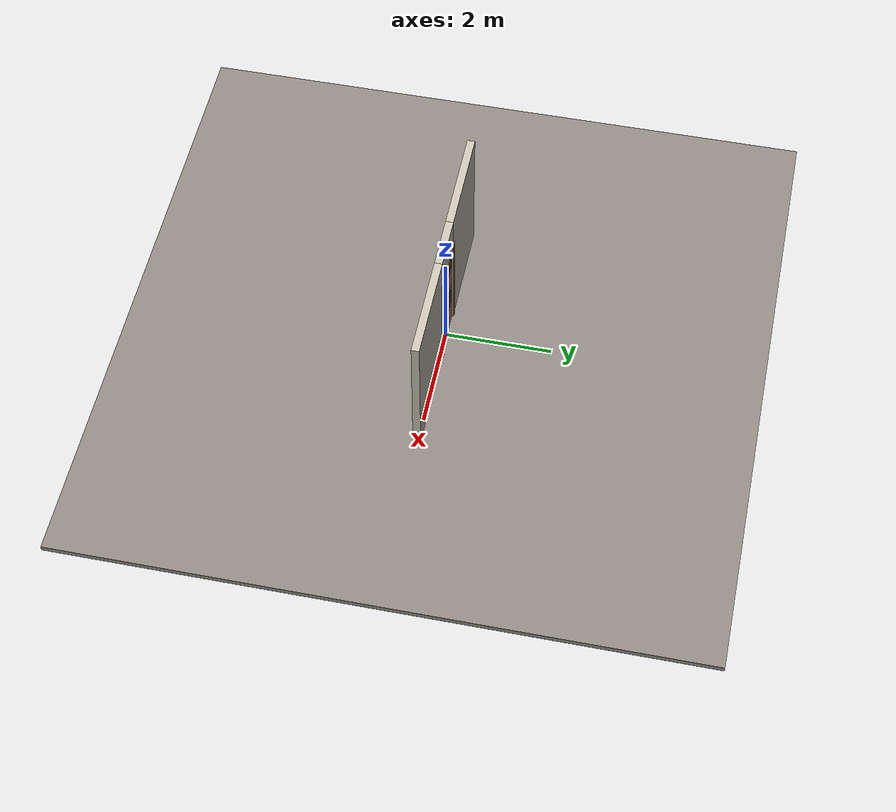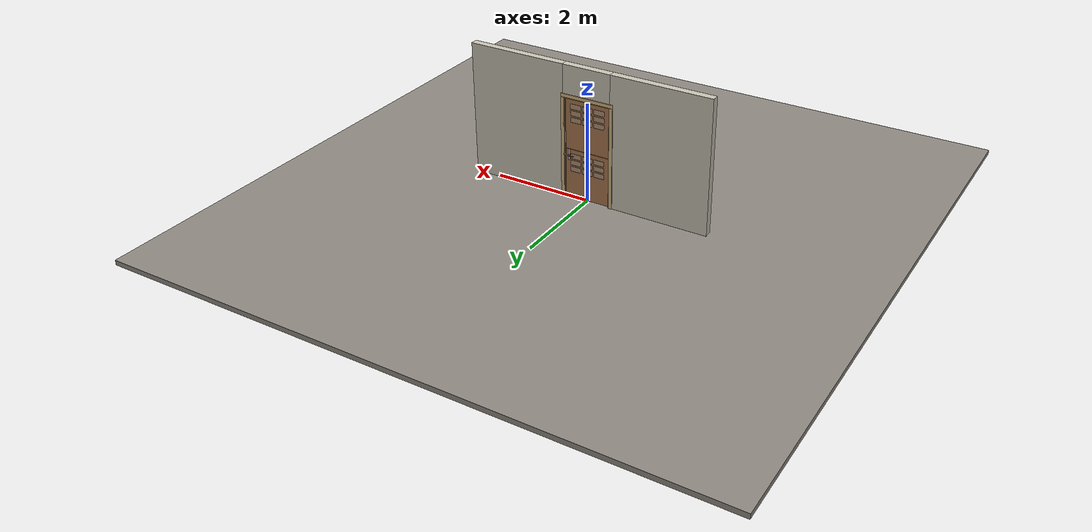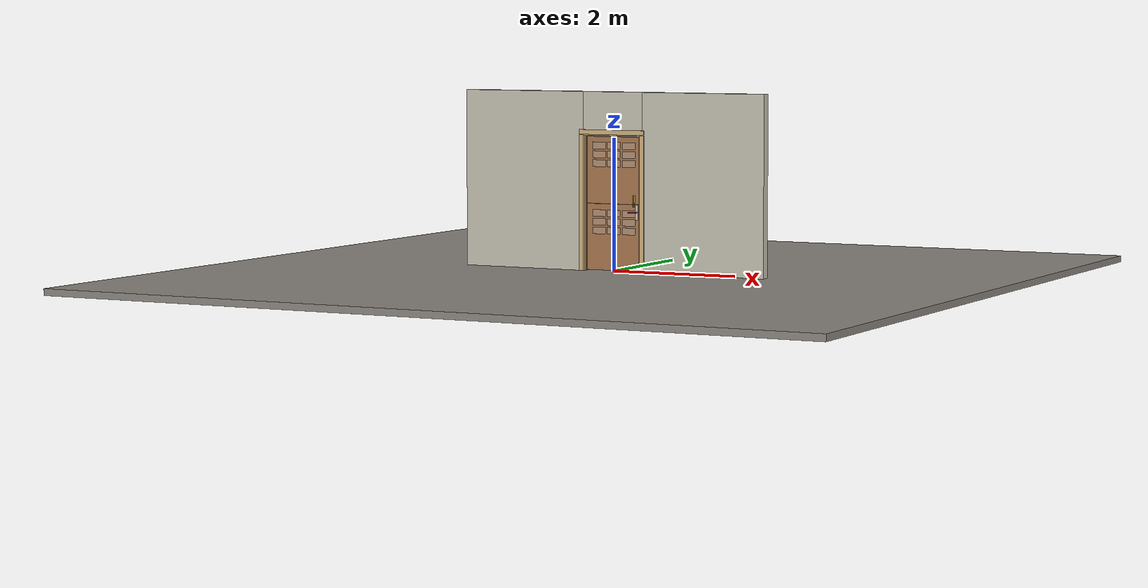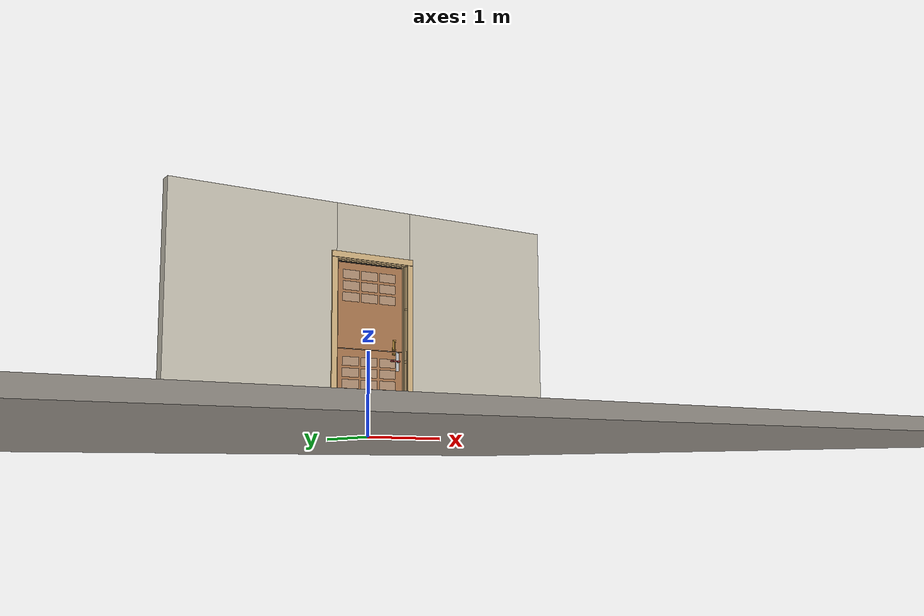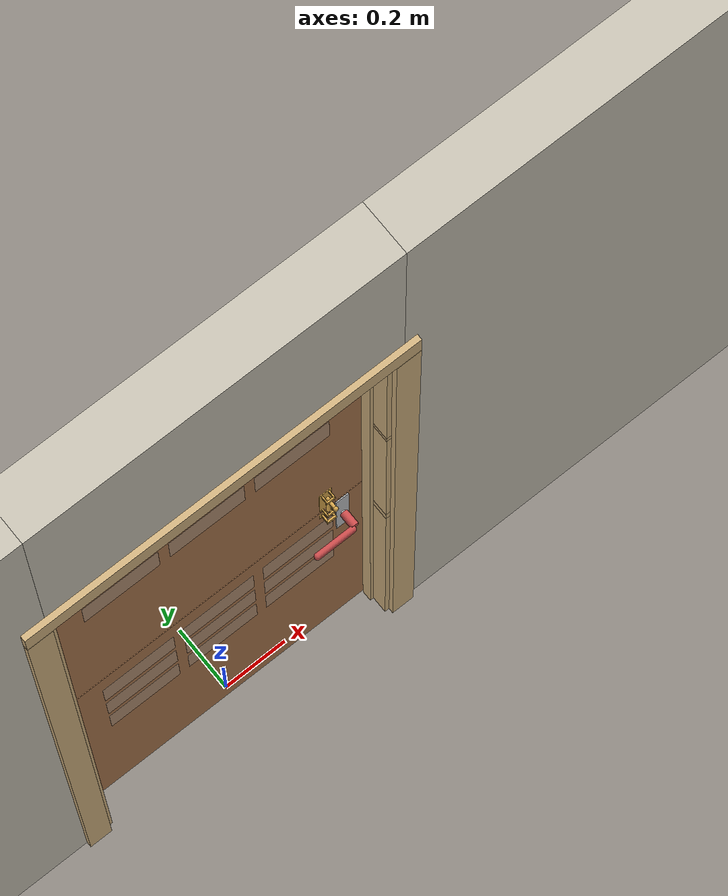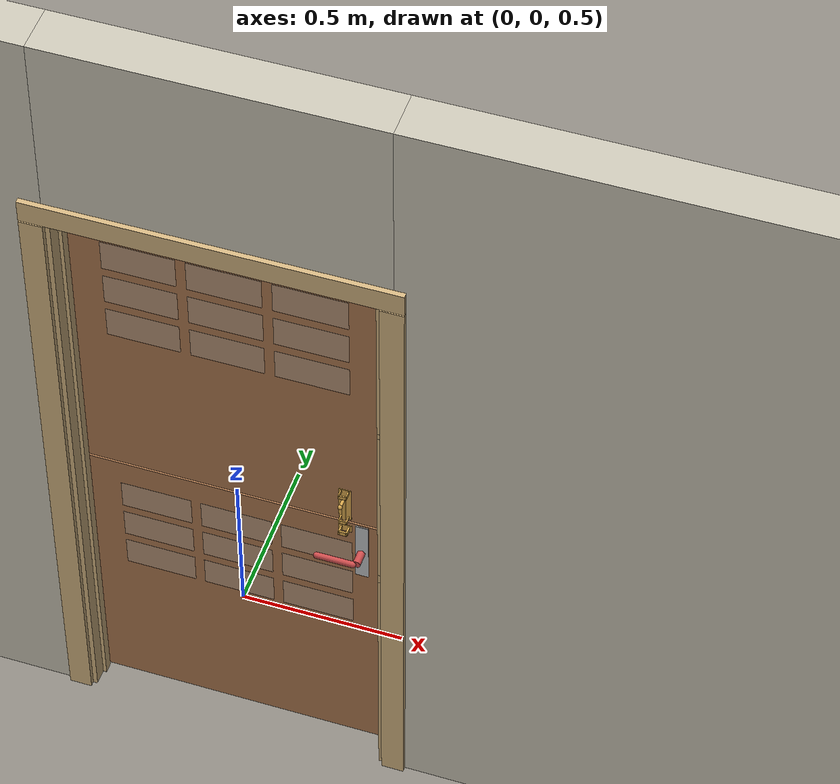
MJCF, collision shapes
<?xml version="1.0" ?>
<mujoco model="db0333_dutch_full">
  <compiler angle="radian" meshdir="../../hardware" texturedir="../../textures" autolimits="true" inertiafromgeom="false"/>
  <option timestep="0.002" integrator="implicitfast" cone="elliptic" impratio="10" noslip_iterations="3">
    <flag multiccd="enable"/>
  </option>
  <size memory="16M"/>
  <default>
    <geom condim="4" solref="0.005 1" solimp="0.95 0.99 0.001"/>
    <joint solreflimit="0.005 1" solimplimit="0.95 0.99 0.001"/>
    <tendon solreflimit="0.005 1"/>
    <equality solref="0.002 1"/>
  </default>
  <visual>
    <headlight ambient="0.4 0.4 0.4" diffuse="0.7 0.7 0.7" specular="0.2 0.2 0.2"/>
    <quality shadowsize="4096"/>
    <map znear="0.01" zfar="60"/>
  </visual>
  <asset>
    <mesh name="hinge_e22b26c0c1" file="hinge_e22b26c0c1.obj"/>
    <mesh name="hinge_jamb_e1d088f8dc" file="hinge_jamb_e1d088f8dc.obj"/>
    <mesh name="lever_f913fc5b7b" file="lever_f913fc5b7b.obj"/>
    <material name="mat_floor" rgba="0.55 0.53 0.5 1" specular="0.2" shininess="0.15" reflectance="0"/>
    <material name="mat_wall" rgba="0.78 0.76 0.7 1" specular="0.2" shininess="0.1" reflectance="0"/>
    <material name="mat_leaf_lower" rgba="0.663 0.462 0.302 1" specular="0.2" shininess="0.45" reflectance="0"/>
    <material name="mat_glass" rgba="0.85 0.92 0.95 0.25" specular="0.2" shininess="0.95" reflectance="0.1"/>
    <material name="mat_leaf_upper" rgba="0.663 0.462 0.302 1" specular="0.2" shininess="0.45" reflectance="0"/>
    <material name="mat_op_stainless" rgba="0.75 0.76 0.77 1" specular="0.8" shininess="0.65" reflectance="0.4"/>
    <material name="mat_trim" rgba="0.85 0.66 0.3 1" specular="0.8" shininess="0.75" reflectance="0.4"/>
    <material name="mat_bolt" rgba="0.85 0.66 0.3 1" specular="0.8" shininess="0.75" reflectance="0.4"/>
    <material name="mat_joinbolt" rgba="0.85 0.66 0.3 1" specular="0.8" shininess="0.75" reflectance="0.4"/>
    <material name="mat_frame" rgba="0.82 0.7 0.5 1" specular="0.2" shininess="0.45" reflectance="0"/>
    <material name="mat_seal" rgba="0.1 0.1 0.1 1" specular="0.2" shininess="0.1" reflectance="0"/>
    <material name="mat_hinge" rgba="0.65 0.66 0.68 1" specular="0.74" shininess="0.5" reflectance="0.36"/>
    <texture name="skybox" type="skybox" builtin="gradient" rgb1="0.6 0.7 0.85" rgb2="0.9 0.92 0.95" width="256" height="256"/>
  </asset>
  <worldbody>
    <light name="sun" pos="1.5 -2.5 4" dir="-0.3 0.5 -0.8" directional="true" diffuse="0.8 0.8 0.8" specular="0.3 0.3 0.3" castshadow="true"/>
    <light name="fill" pos="-1.5 2.5 3" dir="0.3 -0.5 -0.7" directional="true" diffuse="0.35 0.35 0.4" castshadow="false"/>
    <camera name="robot_view" pos="0 -2.572687 1.734312" xyaxes="1 0 0 0 0.26963 0.962964" fovy="52"/>
    <camera name="far_view" pos="0 2.511687 1.734312" xyaxes="-1 0 0 0 -0.26963 0.962964" fovy="52"/>
    <camera name="iso" pos="1.932062 -2.165938 2.141063" xyaxes="0.741536 0.670913 0 -0.242917 0.268487 0.932151" fovy="46"/>
    <camera name="detail_handle" pos="0.4625 -0.877 1.176" xyaxes="0.97561 0.219512 0 -0.070934 0.315262 0.94635" fovy="38"/>
    <geom name="floor" type="box" size="6 6 0.05" pos="0 0 -0.05" material="mat_floor" group="0" contype="1" conaffinity="1" friction="0.8 0.005 0.0001" density="2400"/>
    <geom name="wall_left" type="box" size="1.01025 0.0725 1.35" pos="-1.48975 -0.0305 1.35" material="mat_wall" group="0" contype="1" conaffinity="1" friction="0.6 0.005 0.0001" density="800"/>
    <geom name="wall_right" type="box" size="0.99525 0.0725 1.35" pos="1.50475 -0.0305 1.35" material="mat_wall" group="0" contype="1" conaffinity="1" friction="0.6 0.005 0.0001" density="800"/>
    <geom name="wall_header" type="box" size="0.4945 0.0725 0.303" pos="0.015 -0.0305 2.397" material="mat_wall" group="0" contype="1" conaffinity="1" friction="0.6 0.005 0.0001" density="800"/>
    <geom name="jamb_hinge" type="box" size="0.0095 0.0725 1.0225" pos="-0.47 -0.0305 1.0225" material="mat_frame" group="0" contype="1" conaffinity="1" friction="0.6 0.005 0.0001" density="400"/>
    <geom name="strike_896_wall_n" type="box" size="0.0245 0.047575 0.0167" pos="0.485 -0.055425 0.896" material="mat_frame" group="0" contype="1" conaffinity="1" friction="0.6 0.005 0.0001" density="400"/>
    <geom name="strike_896_wall_p" type="box" size="0.0245 0.008 0.0167" pos="0.485 0.01585 0.896" material="mat_frame" group="0" contype="1" conaffinity="1" friction="0.6 0.005 0.0001" density="400"/>
    <geom name="strike_896_ramp" type="box" size="0.0245 0.020268 0.0167" pos="0.490408 0.034645 0.896" quat="0.985179 0 0 -0.171531" material="mat_frame" group="0" contype="1" conaffinity="1" friction="0.12 0.005 0.0001" density="400"/>
    <geom name="strike_896_back" type="box" size="0.01615 0.00785 0.0167" pos="0.49335 0 0.896" material="mat_frame" group="0" contype="1" conaffinity="1" friction="0.6 0.005 0.0001" density="400"/>
    <geom name="strike_1524_wall_n" type="box" size="0.0245 0.04775 0.01" pos="0.485 -0.05525 1.524" material="mat_frame" group="0" contype="1" conaffinity="1" friction="0.6 0.005 0.0001" density="400"/>
    <geom name="strike_1524_wall_p" type="box" size="0.0245 0.008 0.01" pos="0.485 0.0155 1.524" material="mat_frame" group="0" contype="1" conaffinity="1" friction="0.6 0.005 0.0001" density="400"/>
    <geom name="strike_1524_ramp" type="box" size="0.0245 0.019412 0.01" pos="0.487296 0.039595 1.524" quat="0.997916 0 0 -0.064529" material="mat_frame" group="0" contype="1" conaffinity="1" friction="0.12 0.005 0.0001" density="400"/>
    <geom name="strike_1524_ramp_n" type="box" size="0.0245 0.019412 0.01" pos="0.487296 -0.027595 1.524" quat="0.997916 0 0 0.064529" material="mat_frame" group="0" contype="1" conaffinity="1" friction="0.12 0.005 0.0001" density="400"/>
    <geom name="strike_1524_back" type="box" size="0.0205 0.0075 0.01" pos="0.489 0 1.524" material="mat_frame" group="0" contype="1" conaffinity="1" friction="0.6 0.005 0.0001" density="400"/>
    <geom name="jamb_strike_0" type="box" size="0.0245 0.0725 0.43965" pos="0.485 -0.0305 0.43965" material="mat_frame" group="0" contype="1" conaffinity="1" friction="0.6 0.005 0.0001" density="400"/>
    <geom name="jamb_strike_1" type="box" size="0.0245 0.0725 0.30065" pos="0.485 -0.0305 1.21335" material="mat_frame" group="0" contype="1" conaffinity="1" friction="0.6 0.005 0.0001" density="400"/>
    <geom name="jamb_strike_2" type="box" size="0.0245 0.0725 0.2555" pos="0.485 -0.0305 1.7895" material="mat_frame" group="0" contype="1" conaffinity="1" friction="0.6 0.005 0.0001" density="400"/>
    <geom name="jamb_head" type="box" size="0.4945 0.0725 0.0095" pos="0.015 -0.0305 2.0545" material="mat_frame" group="0" contype="1" conaffinity="1" friction="0.6 0.005 0.0001" density="400"/>
    <geom name="head_stud" type="box" size="0.4945 0.0725 0.015" pos="0.015 -0.0305 2.079" material="mat_wall" group="0" contype="1" conaffinity="1" friction="0.6 0.005 0.0001" density="500"/>
    <geom name="stop_hinge" type="box" size="0.0055 0.016 1.0225" pos="-0.455 -0.0385 1.0225" material="mat_frame" group="0" contype="1" conaffinity="1" friction="0.6 0.005 0.0001" density="400"/>
    <geom name="stop_strike" type="box" size="0.0055 0.016 1.0225" pos="0.455 -0.0385 1.0225" material="mat_frame" group="0" contype="1" conaffinity="1" friction="0.6 0.005 0.0001" density="400"/>
    <geom name="stop_head" type="box" size="0.4605 0.016 0.0055" pos="0 -0.0385 2.0395" material="mat_frame" group="0" contype="1" conaffinity="1" friction="0.6 0.005 0.0001" density="400"/>
    <geom name="seal_hinge" type="box" size="0.004 0.003 1.0225" pos="-0.4575 -0.025 1.0225" material="mat_seal" group="1" contype="0" conaffinity="0" density="1100"/>
    <geom name="seal_strike" type="box" size="0.004 0.003 1.0225" pos="0.4575 -0.025 1.0225" material="mat_seal" group="1" contype="0" conaffinity="0" density="1100"/>
    <geom name="seal_head" type="box" size="0.4405 0.003 0.008" pos="0 -0.025 2.033" material="mat_seal" group="1" contype="0" conaffinity="0" density="1100"/>
    <geom name="casing_l_n" type="box" size="0.035 0.008 1.032" pos="-0.5095 -0.111 1.0225" material="mat_frame" group="2" contype="0" conaffinity="0" density="400"/>
    <geom name="casing_r_n" type="box" size="0.035 0.008 1.032" pos="0.5095 -0.111 1.0225" material="mat_frame" group="2" contype="0" conaffinity="0" density="400"/>
    <geom name="casing_h_n" type="box" size="0.5445 0.008 0.035" pos="0 -0.111 2.094" material="mat_frame" group="2" contype="0" conaffinity="0" density="400"/>
    <geom name="casing_l_p" type="box" size="0.035 0.008 1.032" pos="-0.5095 0.05 1.0225" material="mat_frame" group="2" contype="0" conaffinity="0" density="400"/>
    <geom name="casing_r_p" type="box" size="0.035 0.008 1.032" pos="0.5095 0.05 1.0225" material="mat_frame" group="2" contype="0" conaffinity="0" density="400"/>
    <geom name="casing_h_p" type="box" size="0.5445 0.008 0.035" pos="0 0.05 2.094" material="mat_frame" group="2" contype="0" conaffinity="0" density="400"/>
    <geom name="hinge_0_jamb" type="mesh" mesh="hinge_jamb_e1d088f8dc" pos="-0.4605 0.029 0.262" quat="0 1 0 0" material="mat_hinge" group="1" contype="0" conaffinity="0" density="7850"/>
    <geom name="hinge_1_jamb" type="mesh" mesh="hinge_jamb_e1d088f8dc" pos="-0.4605 0.029 0.452" quat="0 1 0 0" material="mat_hinge" group="1" contype="0" conaffinity="0" density="7850"/>
    <geom name="hinge_2_jamb" type="mesh" mesh="hinge_jamb_e1d088f8dc" pos="-0.4605 0.029 0.642" quat="0 1 0 0" material="mat_hinge" group="1" contype="0" conaffinity="0" density="7850"/>
    <geom name="hinge_3_jamb" type="mesh" mesh="hinge_jamb_e1d088f8dc" pos="-0.4605 0.029 0.832" quat="0 1 0 0" material="mat_hinge" group="1" contype="0" conaffinity="0" density="7850"/>
    <geom name="hinge_0_jamb_2" type="mesh" mesh="hinge_jamb_e1d088f8dc" pos="-0.4605 0.029 1.27" quat="0 1 0 0" material="mat_hinge" group="1" contype="0" conaffinity="0" density="7850"/>
    <geom name="hinge_1_jamb_2" type="mesh" mesh="hinge_jamb_e1d088f8dc" pos="-0.4605 0.029 1.464" quat="0 1 0 0" material="mat_hinge" group="1" contype="0" conaffinity="0" density="7850"/>
    <geom name="hinge_2_jamb_2" type="mesh" mesh="hinge_jamb_e1d088f8dc" pos="-0.4605 0.029 1.658" quat="0 1 0 0" material="mat_hinge" group="1" contype="0" conaffinity="0" density="7850"/>
    <geom name="hinge_3_jamb_2" type="mesh" mesh="hinge_jamb_e1d088f8dc" pos="-0.4605 0.029 1.852" quat="0 1 0 0" material="mat_hinge" group="1" contype="0" conaffinity="0" density="7850"/>
    <site name="approach_point" pos="0 -1.5 0" quat="1 0 0 0" size="0.05" rgba="0.2 0.9 0.2 0.5" group="4"/>
    <site name="goal_point" pos="0 1.5 0" quat="1 0 0 0" size="0.05" rgba="0.2 0.9 0.2 0.5" group="4"/>
    <site name="door_plane_center" pos="0 0 1.0225" quat="1 0 0 0" size="0.02" rgba="0.2 0.9 0.2 0.5" group="4"/>
    <body name="leaf_lower" pos="-0.4605 0 0">
      <inertial pos="0.173843 0.012218 0.616607" mass="19.492221" quat="0.680814 -0.683669 -0.175208 -0.195937" diaginertia="0.660602594 2.712973085 3.361259116"/>
      <joint name="leaf_lower_hinge" type="hinge" axis="0 0 1" pos="0.003 0.029 0" limited="true" range="0 1.570796" solreflimit="0.02 1" damping="0.30611" frictionloss="0.870299" armature="0.02"/>
      <geom name="leaf_lower_slab" type="box" size="0.457 0.022 0.5" pos="0.46 0 0.512" material="mat_leaf_lower" group="0" contype="1" conaffinity="1" friction="0.35 0.005 0.0001" density="1"/>
      <geom name="leaf_lower_glass_0" type="box" size="0.10882 0.0228 0.050833" pos="0.21236 0 0.607833" material="mat_glass" group="1" contype="0" conaffinity="0" density="1"/>
      <geom name="leaf_lower_glass_1" type="box" size="0.10882 0.0228 0.050833" pos="0.46 0 0.607833" material="mat_glass" group="1" contype="0" conaffinity="0" density="1"/>
      <geom name="leaf_lower_glass_2" type="box" size="0.10882 0.0228 0.050833" pos="0.70764 0 0.607833" material="mat_glass" group="1" contype="0" conaffinity="0" density="1"/>
      <geom name="leaf_lower_glass_3" type="box" size="0.10882 0.0228 0.050833" pos="0.21236 0 0.7395" material="mat_glass" group="1" contype="0" conaffinity="0" density="1"/>
      <geom name="leaf_lower_glass_4" type="box" size="0.10882 0.0228 0.050833" pos="0.46 0 0.7395" material="mat_glass" group="1" contype="0" conaffinity="0" density="1"/>
      <geom name="leaf_lower_glass_5" type="box" size="0.10882 0.0228 0.050833" pos="0.70764 0 0.7395" material="mat_glass" group="1" contype="0" conaffinity="0" density="1"/>
      <geom name="leaf_lower_glass_6" type="box" size="0.10882 0.0228 0.050833" pos="0.21236 0 0.871167" material="mat_glass" group="1" contype="0" conaffinity="0" density="1"/>
      <geom name="leaf_lower_glass_7" type="box" size="0.10882 0.0228 0.050833" pos="0.46 0 0.871167" material="mat_glass" group="1" contype="0" conaffinity="0" density="1"/>
      <geom name="leaf_lower_glass_8" type="box" size="0.10882 0.0228 0.050833" pos="0.70764 0 0.871167" material="mat_glass" group="1" contype="0" conaffinity="0" density="1"/>
      <geom name="lower_handle_escutcheon_n" type="box" size="0.02 0.0015 0.11" pos="0.847 -0.0235 0.896" material="mat_op_stainless" group="1" contype="0" conaffinity="0" density="3000"/>
      <geom name="lower_handle_escutcheon_p" type="box" size="0.02 0.0015 0.11" pos="0.847 0.0235 0.896" material="mat_op_stainless" group="1" contype="0" conaffinity="0" density="3000"/>
      <geom name="lower_latch_bolt_faceplate" type="box" size="0.0006 0.01235 0.0267" pos="0.9164 0 0.896" material="mat_bolt" group="1" contype="0" conaffinity="0" density="8500"/>
      <geom name="join_keeper_leg_n" type="box" size="0.007 0.0025 0.013" pos="0.7855 -0.035 0.986" quat="-0.5 -0.5 -0.5 0.5" material="mat_joinbolt" group="0" contype="1" conaffinity="1" friction="0.6 0.005 0.0001" density="7800"/>
      <geom name="join_keeper_leg_p" type="box" size="0.007 0.0025 0.013" pos="0.8085 -0.035 0.986" quat="-0.5 -0.5 -0.5 0.5" material="mat_joinbolt" group="0" contype="1" conaffinity="1" friction="0.6 0.005 0.0001" density="7800"/>
      <geom name="join_keeper_bridge" type="box" size="0.007 0.014 0.0025" pos="0.797 -0.0455 0.986" quat="-0.5 -0.5 -0.5 0.5" material="mat_joinbolt" group="0" contype="1" conaffinity="1" friction="0.6 0.005 0.0001" density="7800"/>
      <geom name="join_keeper_base" type="box" size="0.013 0.02 0.001" pos="0.797 -0.023 0.986" quat="-0.5 -0.5 -0.5 0.5" material="mat_joinbolt" group="1" contype="0" conaffinity="0" density="7800"/>
      <geom name="hinge_0" type="mesh" mesh="hinge_e22b26c0c1" pos="0 0.029 0.262" quat="0 1 0 0" material="mat_hinge" group="1" contype="0" conaffinity="0" density="7850"/>
      <geom name="hinge_1" type="mesh" mesh="hinge_e22b26c0c1" pos="0 0.029 0.452" quat="0 1 0 0" material="mat_hinge" group="1" contype="0" conaffinity="0" density="7850"/>
      <geom name="hinge_2" type="mesh" mesh="hinge_e22b26c0c1" pos="0 0.029 0.642" quat="0 1 0 0" material="mat_hinge" group="1" contype="0" conaffinity="0" density="7850"/>
      <geom name="hinge_3" type="mesh" mesh="hinge_e22b26c0c1" pos="0 0.029 0.832" quat="0 1 0 0" material="mat_hinge" group="1" contype="0" conaffinity="0" density="7850"/>
      <body name="lower_handle" pos="0.847 0 0.896">
        <inertial pos="-0.038995 0 0" mass="0.772658" quat="0.707107 0 0 -0.707107" diaginertia="0.001545312 0.003473151 0.004979007"/>
        <joint name="lower_handle_hinge" type="hinge" axis="0 -1 0" limited="true" range="0 0.65" damping="0.225568" frictionloss="0.051863" stiffness="1" springref="-0.503022" armature="0.01"/>
        <geom name="lower_handle_spindle" type="cylinder" size="0.006 0.034" pos="0 0 0" quat="0.707107 -0.707107 0 0" material="mat_op_stainless" group="1" contype="0" conaffinity="0" density="7850"/>
        <geom name="lower_handle_lever_n" type="mesh" mesh="lever_f913fc5b7b" pos="0 -0.022 0" quat="0.707107 0.707107 0 0" material="mat_op_stainless" group="1" contype="0" conaffinity="0" density="3000"/>
        <geom name="lower_handle_lever_col_n" type="capsule" size="0.0095 0.0555" pos="-0.065 -0.077 0" quat="0.707107 0 -0.707107 0" material="mat_op_stainless" group="3" contype="1" conaffinity="1" rgba="0.8 0.3 0.3 0.25" friction="0.7 0.01 0.0001" density="3000"/>
        <geom name="lower_handle_hub_col_n" type="cylinder" size="0.012 0.022" pos="0 -0.052 0" quat="0.707107 -0.707107 0 0" material="mat_op_stainless" group="3" contype="1" conaffinity="1" rgba="0.8 0.3 0.3 0.25" friction="0.6 0.005 0.0001" density="3000"/>
        <geom name="lower_handle_lever_p" type="mesh" mesh="lever_f913fc5b7b" pos="0 0.022 0" quat="-0.707107 0.707107 0 0" material="mat_op_stainless" group="1" contype="0" conaffinity="0" density="3000"/>
        <geom name="lower_handle_lever_col_p" type="capsule" size="0.0095 0.0555" pos="-0.065 0.077 0" quat="0.707107 0 -0.707107 0" material="mat_op_stainless" group="3" contype="1" conaffinity="1" rgba="0.8 0.3 0.3 0.25" friction="0.7 0.01 0.0001" density="3000"/>
        <geom name="lower_handle_hub_col_p" type="cylinder" size="0.012 0.022" pos="0 0.052 0" quat="0.707107 -0.707107 0 0" material="mat_op_stainless" group="3" contype="1" conaffinity="1" rgba="0.8 0.3 0.3 0.25" friction="0.6 0.005 0.0001" density="3000"/>
        <site name="lower_handle_grip_n" pos="-0.104 -0.077 0" quat="1 0 0 0" size="0.012" rgba="0.2 0.9 0.2 0.5" group="4"/>
        <site name="lower_handle_grip_p" pos="-0.104 0.077 0" quat="1 0 0 0" size="0.012" rgba="0.2 0.9 0.2 0.5" group="4"/>
      </body>
      <body name="lower_latch_bolt" pos="0.917 0 0.896">
        <inertial pos="-0.00865 0 0" mass="0.041419" quat="0.92388 -0.382683 0 0" diaginertia="0.000000798 0.000005598 0.000005598"/>
        <joint name="lower_latch_bolt_slide" type="slide" axis="-1 0 0" limited="true" range="0 0.0127" damping="2" frictionloss="0.3" stiffness="300" springref="-0.008333" armature="0.1"/>
        <geom name="lower_latch_bolt_capsule" type="capsule" size="0.00635 0.015" pos="-0.00865 0 0" quat="0.707107 0 0.707107 0" material="mat_bolt" group="0" contype="1" conaffinity="1" friction="0.2 0.005 0.0001" density="8500"/>
      </body>
    </body>
    <body name="leaf_upper" pos="-0.4605 0 0">
      <inertial pos="0.118696 0.011552 1.50709" mass="19.735411" quat="0.659412 0.667531 0.226765 -0.261067" diaginertia="0.693661685 2.1647257 2.849118713"/>
      <joint name="leaf_upper_hinge" type="hinge" axis="0 0 1" pos="0.003 0.029 0" limited="true" range="0 1.570796" solreflimit="0.02 1" damping="0.30611" frictionloss="0.870299" armature="0.02"/>
      <geom name="leaf_upper_slab" type="box" size="0.457 0.022 0.506" pos="0.46 0 1.526" material="mat_leaf_upper" group="0" contype="1" conaffinity="1" friction="0.35 0.005 0.0001" density="1"/>
      <geom name="leaf_upper_glass_0" type="box" size="0.10882 0.0228 0.051833" pos="0.21236 0 1.622833" material="mat_glass" group="1" contype="0" conaffinity="0" density="1"/>
      <geom name="leaf_upper_glass_1" type="box" size="0.10882 0.0228 0.051833" pos="0.46 0 1.622833" material="mat_glass" group="1" contype="0" conaffinity="0" density="1"/>
      <geom name="leaf_upper_glass_2" type="box" size="0.10882 0.0228 0.051833" pos="0.70764 0 1.622833" material="mat_glass" group="1" contype="0" conaffinity="0" density="1"/>
      <geom name="leaf_upper_glass_3" type="box" size="0.10882 0.0228 0.051833" pos="0.21236 0 1.7565" material="mat_glass" group="1" contype="0" conaffinity="0" density="1"/>
      <geom name="leaf_upper_glass_4" type="box" size="0.10882 0.0228 0.051833" pos="0.46 0 1.7565" material="mat_glass" group="1" contype="0" conaffinity="0" density="1"/>
      <geom name="leaf_upper_glass_5" type="box" size="0.10882 0.0228 0.051833" pos="0.70764 0 1.7565" material="mat_glass" group="1" contype="0" conaffinity="0" density="1"/>
      <geom name="leaf_upper_glass_6" type="box" size="0.10882 0.0228 0.051833" pos="0.21236 0 1.890167" material="mat_glass" group="1" contype="0" conaffinity="0" density="1"/>
      <geom name="leaf_upper_glass_7" type="box" size="0.10882 0.0228 0.051833" pos="0.46 0 1.890167" material="mat_glass" group="1" contype="0" conaffinity="0" density="1"/>
      <geom name="leaf_upper_glass_8" type="box" size="0.10882 0.0228 0.051833" pos="0.70764 0 1.890167" material="mat_glass" group="1" contype="0" conaffinity="0" density="1"/>
      <geom name="upper_catch_faceplate" type="box" size="0.0006 0.012 0.02" pos="0.9164 0 1.524" material="mat_bolt" group="1" contype="0" conaffinity="0" density="8500"/>
      <geom name="join_bolt_plate" type="box" size="0.064 0.019 0.001" pos="0.797 -0.023 1.092" quat="-0.5 -0.5 -0.5 0.5" material="mat_joinbolt" group="1" contype="0" conaffinity="0" density="7800"/>
      <geom name="join_bolt_guide_0_leg_n" type="box" size="0.006 0.002 0.0125" pos="0.786 -0.0345 1.036" quat="-0.5 -0.5 -0.5 0.5" material="mat_joinbolt" group="1" contype="0" conaffinity="0" density="7800"/>
      <geom name="join_bolt_guide_0_leg_p" type="box" size="0.006 0.002 0.0125" pos="0.808 -0.0345 1.036" quat="-0.5 -0.5 -0.5 0.5" material="mat_joinbolt" group="1" contype="0" conaffinity="0" density="7800"/>
      <geom name="join_bolt_guide_0_bridge" type="box" size="0.006 0.013 0.002" pos="0.797 -0.045 1.036" quat="-0.5 -0.5 -0.5 0.5" material="mat_joinbolt" group="1" contype="0" conaffinity="0" density="7800"/>
      <geom name="join_bolt_guide_1_leg_n" type="box" size="0.006 0.002 0.0125" pos="0.786 -0.0345 1.146" quat="-0.5 -0.5 -0.5 0.5" material="mat_joinbolt" group="1" contype="0" conaffinity="0" density="7800"/>
      <geom name="join_bolt_guide_1_leg_p" type="box" size="0.006 0.002 0.0125" pos="0.808 -0.0345 1.146" quat="-0.5 -0.5 -0.5 0.5" material="mat_joinbolt" group="1" contype="0" conaffinity="0" density="7800"/>
      <geom name="join_bolt_guide_1_bridge" type="box" size="0.006 0.013 0.002" pos="0.797 -0.045 1.146" quat="-0.5 -0.5 -0.5 0.5" material="mat_joinbolt" group="1" contype="0" conaffinity="0" density="7800"/>
      <geom name="hinge_0_2" type="mesh" mesh="hinge_e22b26c0c1" pos="0 0.029 1.27" quat="0 1 0 0" material="mat_hinge" group="1" contype="0" conaffinity="0" density="7850"/>
      <geom name="hinge_1_2" type="mesh" mesh="hinge_e22b26c0c1" pos="0 0.029 1.464" quat="0 1 0 0" material="mat_hinge" group="1" contype="0" conaffinity="0" density="7850"/>
      <geom name="hinge_2_2" type="mesh" mesh="hinge_e22b26c0c1" pos="0 0.029 1.658" quat="0 1 0 0" material="mat_hinge" group="1" contype="0" conaffinity="0" density="7850"/>
      <geom name="hinge_3_2" type="mesh" mesh="hinge_e22b26c0c1" pos="0 0.029 1.852" quat="0 1 0 0" material="mat_hinge" group="1" contype="0" conaffinity="0" density="7850"/>
      <body name="upper_catch" pos="0.917 0 1.524">
        <inertial pos="-0.013 0 0" mass="0.02884" quat="0 0 0.707107 0.707107" diaginertia="0.000000491 0.000002465 0.000002465"/>
        <joint name="upper_catch_slide" type="slide" axis="-1 0 0" limited="true" range="0 0.004" damping="2" frictionloss="0.3" stiffness="4000" springref="-0.00375" armature="0.1"/>
        <geom name="upper_catch_capsule" type="capsule" size="0.006 0.011" pos="-0.013 0 0" quat="0.707107 0 0.707107 0" material="mat_bolt" group="0" contype="1" conaffinity="1" friction="0.2 0.005 0.0001" density="8500"/>
      </body>
      <body name="join_bolt" pos="0.797 -0.034 1.02">
        <inertial pos="0 -0.00492 0.075264" mass="0.111784" quat="-0.065075 0.704106 -0.065075 0.704106" diaginertia="0.000009833 0.000100603 0.000108548"/>
        <joint name="join_bolt_slide" type="slide" axis="0 0 1" limited="true" range="0 0.05" damping="1" frictionloss="1" armature="0.1" ref="0.05"/>
        <geom name="join_bolt_rod" type="capsule" size="0.006 0.044" pos="0 0 0.066" quat="0 1 0 0" material="mat_joinbolt" group="0" contype="1" conaffinity="1" friction="0.6 0.005 0.0001" density="7850"/>
        <geom name="join_bolt_knob" type="capsule" size="0.005 0.01" pos="0 -0.015 0.105" quat="0.707107 0.707107 0 0" material="mat_joinbolt" group="0" contype="1" conaffinity="1" friction="0.6 0.005 0.0001" density="7850"/>
        <geom name="join_bolt_knob_end" type="sphere" size="0.00675" pos="0 -0.03 0.105" material="mat_joinbolt" group="1" contype="0" conaffinity="0" density="7850"/>
        <site name="join_bolt_grip" pos="0 -0.034 0.105" quat="1 0 0 0" size="0.012" rgba="0.2 0.9 0.2 0.5" group="4"/>
      </body>
    </body>
  </worldbody>
  <tendon>
    <fixed name="lower_latch_bolt_coupling" limited="true" range="0 10">
      <joint joint="lower_latch_bolt_slide" coef="1"/>
      <joint joint="lower_handle_hinge" coef="-0.02082"/>
    </fixed>
  </tendon>
  <sensor>
    <jointpos name="leaf_lower_hinge_pos" joint="leaf_lower_hinge"/>
    <jointvel name="leaf_lower_hinge_vel" joint="leaf_lower_hinge"/>
    <jointpos name="leaf_upper_hinge_pos" joint="leaf_upper_hinge"/>
    <jointvel name="leaf_upper_hinge_vel" joint="leaf_upper_hinge"/>
    <jointpos name="lower_handle_hinge_pos" joint="lower_handle_hinge"/>
    <jointvel name="lower_handle_hinge_vel" joint="lower_handle_hinge"/>
    <jointpos name="lower_latch_bolt_slide_pos" joint="lower_latch_bolt_slide"/>
    <jointvel name="lower_latch_bolt_slide_vel" joint="lower_latch_bolt_slide"/>
    <jointpos name="upper_catch_slide_pos" joint="upper_catch_slide"/>
    <jointvel name="upper_catch_slide_vel" joint="upper_catch_slide"/>
    <jointpos name="join_bolt_slide_pos" joint="join_bolt_slide"/>
    <jointvel name="join_bolt_slide_vel" joint="join_bolt_slide"/>
  </sensor>
</mujoco>
